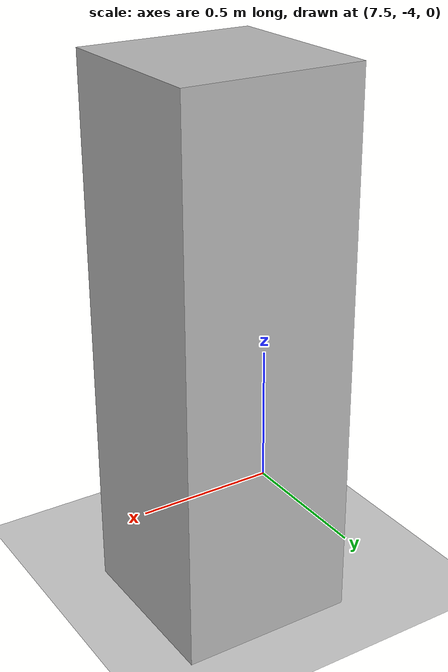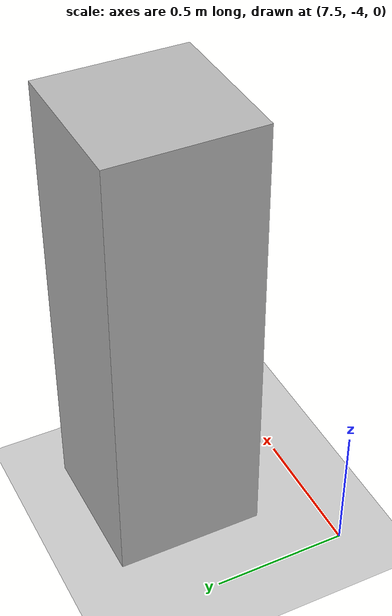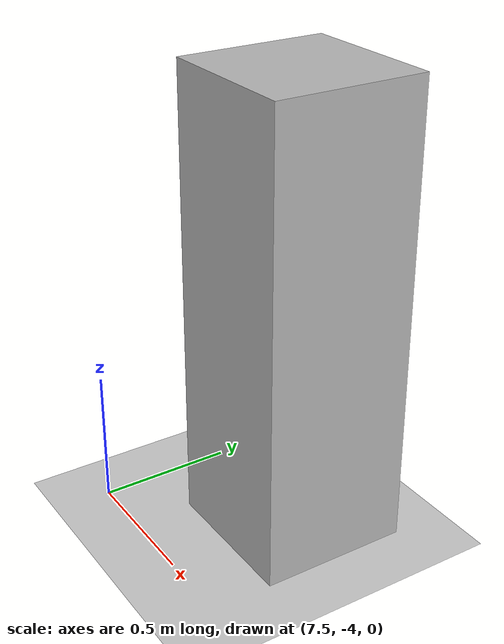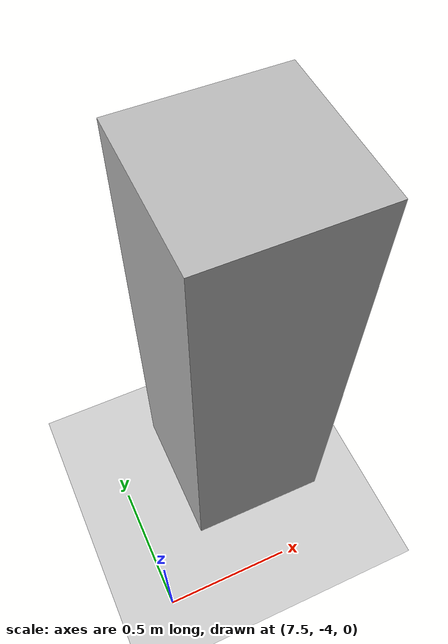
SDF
<?xml version="1.0"?>
<sdf version="1.6">
  <world name="v2-04g-p2-q1-qual-high-speed-to-conflict-overlay-transition-v140-s5341">
    <gravity>0 0 -9.81</gravity>
    <physics name="v2_deterministic" type="ode">
      <max_step_size>0.002</max_step_size>
      <real_time_update_rate>500</real_time_update_rate>
    </physics>
    <include>
      <uri>model://sun</uri>
    </include>
    <include>
      <uri>model://ground_plane</uri>
    </include>
    <model name="crossing-agent">
      <static>true</static>
      <pose>8.000000000 -3.500000000 0.850000000 0 0 1.570796327</pose>
      <link name="link">
        <collision name="collision">
          <geometry>
            <box>
              <size>0.550000 0.550000 1.700000</size>
            </box>
          </geometry>
        </collision>
        <visual name="visual">
          <geometry>
            <box>
              <size>0.550000 0.550000 1.700000</size>
            </box>
          </geometry>
        </visual>
      </link>
      <plugin name="crossing-agent_trajectory" filename="libv2_trajectory_actor_plugin.so">
        <loop>false</loop>
        <z>0.850000</z>
        <waypoint>
          <time>10.900000000</time>
          <x>8.000000000</x>
          <y>-3.500000000</y>
          <yaw>1.570796327</yaw>
        </waypoint>
        <waypoint>
          <time>18.900000000</time>
          <x>8.000000000</x>
          <y>3.500000000</y>
          <yaw>1.570796327</yaw>
        </waypoint>
      </plugin>
    </model>
  </world>
</sdf>
